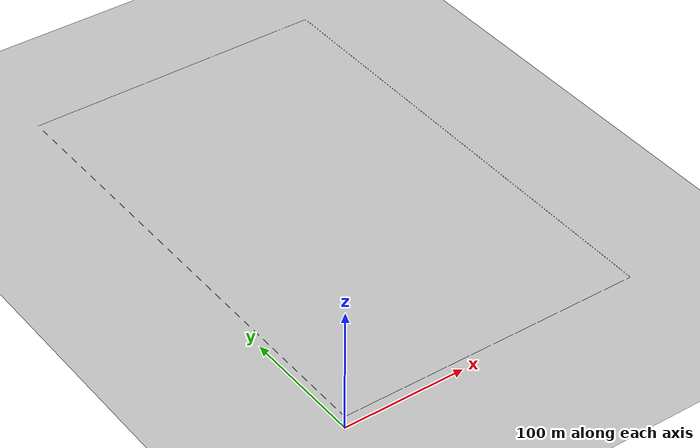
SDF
<sdf version="1.7">
 <world name="default">
  <light name="sun" type="directional">
   <pose>0 0 10 0 -0 0</pose>
   <diffuse>0.8 0.8 0.8 1</diffuse>
   <specular>0.2 0.2 0.2 1</specular>
   <attenuation>
    <range>1000</range>
    <constant>0.9</constant>
    <linear>0.01</linear>
    <quadratic>0.001</quadratic>
   </attenuation>
   <direction>-0.5 0.1 -0.9</direction>
   <spot><inner_angle>0</inner_angle><outer_angle>0</outer_angle><falloff>0</falloff></spot>
  </light>
  <physics name="default_physics" default="0" type="ode">
   <ode>
    <solver>
     <type>quick</type>
     <iters>10</iters>
     <sor>1.3</sor>
     <use_dynamic_moi_rescaling>0</use_dynamic_moi_rescaling>
    </solver>
    <constraints>
     <cfm>0</cfm>
     <erp>0.2</erp>
     <contact_max_correcting_vel>100</contact_max_correcting_vel>
     <contact_surface_layer>0.001</contact_surface_layer>
    </constraints>
   </ode>
   <max_step_size>0.004</max_step_size>
   <real_time_factor>1</real_time_factor>
   <real_time_update_rate>250</real_time_update_rate>
  </physics>
  <gravity>0 0 -9.8066</gravity>
  <magnetic_field>6e-06 2.3e-05 -4.2e-05</magnetic_field>
  <atmosphere type="adiabatic"/>
  <scene><ambient>0.4 0.4 0.4 1</ambient><background>0.7 0.7 0.7 1</background><shadows>1</shadows></scene>
  <spherical_coordinates>
   <surface_model>EARTH_WGS84</surface_model>
   <latitude_deg>0</latitude_deg>
   <longitude_deg>0</longitude_deg>
   <elevation>0</elevation>
   <heading_deg>0</heading_deg>
  </spherical_coordinates>
  <model name="grass_plane">
   <static>1</static>
   <link name="link">
    <collision name="collision">
     <geometry><plane><normal>0 0 1</normal><size>1000 1000</size></plane></geometry>
     <surface><friction><ode><mu>100</mu><mu2>50</mu2></ode></friction></surface>
    </collision>
    <visual name="visual">
     <cast_shadows>0</cast_shadows>
     <geometry><plane><normal>0 0 1</normal><size>1000 1000</size></plane></geometry>
     <material>
      <script>
       <uri>model://grass_plane/materials/scripts</uri>
       <uri>model://grass_plane/materials/textures/</uri>
       <name>GrassPlane/Image</name>
      </script>
     </material>
    </visual>
   </link>
  </model>
  <model name="x_balk">
   <link name="x_balk::link">
    <inertial>
     <mass>1</mass>
     <inertia>
      <ixx>0.166667</ixx>
      <ixy>0</ixy>
      <ixz>0</ixz>
      <iyy>0.166667</iyy>
      <iyz>0</iyz>
      <izz>0.166667</izz>
     </inertia>
    </inertial>
    <gravity>0</gravity>
    <visual name="visual">
     <geometry><box><size>250 0.1 0.1</size></box></geometry>
     <material>
      <script><name>Gazebo/Grey</name><uri>file://media/materials/scripts/gazebo.material</uri></script>
      <shader type="pixel"><normal_map>__default__</normal_map></shader>
      <ambient>0.3 0.3 0.3 1</ambient>
      <diffuse>0.7 0.7 0.7 1</diffuse>
      <specular>0.01 0.01 0.01 1</specular>
      <emissive>0 0 0 1</emissive>
     </material>
    </visual>
   </link>
   <static>0</static>
   <pose>125 0 10 0 -0 0</pose>
  </model>
  <model name="x_balk_0">
   <link name="x_balk_0::link">
    <inertial>
     <mass>1</mass>
     <inertia>
      <ixx>0.166667</ixx>
      <ixy>0</ixy>
      <ixz>0</ixz>
      <iyy>0.166667</iyy>
      <iyz>0</iyz>
      <izz>0.166667</izz>
     </inertia>
    </inertial>
    <gravity>0</gravity>
    <visual name="visual">
     <geometry><box><size>250 0.1 0.1</size></box></geometry>
     <material>
      <script><name>Gazebo/Grey</name><uri>file://media/materials/scripts/gazebo.material</uri></script>
      <shader type="pixel"><normal_map>__default__</normal_map></shader>
      <ambient>0.3 0.3 0.3 1</ambient>
      <diffuse>0.7 0.7 0.7 1</diffuse>
      <specular>0.01 0.01 0.01 1</specular>
      <emissive>0 0 0 1</emissive>
     </material>
    </visual>
   </link>
   <static>0</static>
   <pose>125 400 10 0 -0 0</pose>
  </model>
  <model name="y_balk">
   <link name="y_balk::y_balk::unit_box::link">
    <inertial>
     <mass>1</mass>
     <inertia>
      <ixx>0.166667</ixx>
      <ixy>0</ixy>
      <ixz>0</ixz>
      <iyy>0.166667</iyy>
      <iyz>0</iyz>
      <izz>0.166667</izz>
     </inertia>
    </inertial>
    <gravity>0</gravity>
    <visual name="visual">
     <geometry><box><size>0.1 400 0.1</size></box></geometry>
     <material>
      <script><name>Gazebo/Grey</name><uri>file://media/materials/scripts/gazebo.material</uri></script>
      <shader type="pixel"><normal_map>__default__</normal_map></shader>
      <ambient>0.3 0.3 0.3 1</ambient>
      <diffuse>0.7 0.7 0.7 1</diffuse>
      <specular>0.01 0.01 0.01 1</specular>
      <emissive>0 0 0 1</emissive>
     </material>
    </visual>
   </link>
   <static>0</static>
   <pose>0 200 10 0 -0 0</pose>
  </model>
  <model name="y_balk_0">
   <link name="y_balk_0::y_balk::unit_box::link">
    <inertial>
     <mass>1</mass>
     <inertia>
      <ixx>0.166667</ixx>
      <ixy>0</ixy>
      <ixz>0</ixz>
      <iyy>0.166667</iyy>
      <iyz>0</iyz>
      <izz>0.166667</izz>
     </inertia>
    </inertial>
    <gravity>0</gravity>
    <visual name="visual">
     <geometry><box><size>0.1 400 0.1</size></box></geometry>
     <material>
      <script><name>Gazebo/Grey</name><uri>file://media/materials/scripts/gazebo.material</uri></script>
      <shader type="pixel"><normal_map>__default__</normal_map></shader>
      <ambient>0.3 0.3 0.3 1</ambient>
      <diffuse>0.7 0.7 0.7 1</diffuse>
      <specular>0.01 0.01 0.01 1</specular>
      <emissive>0 0 0 1</emissive>
     </material>
    </visual>
   </link>
   <static>0</static>
   <pose>250 200 10 0 -0 0</pose>
  </model>
 </world>
</sdf>
